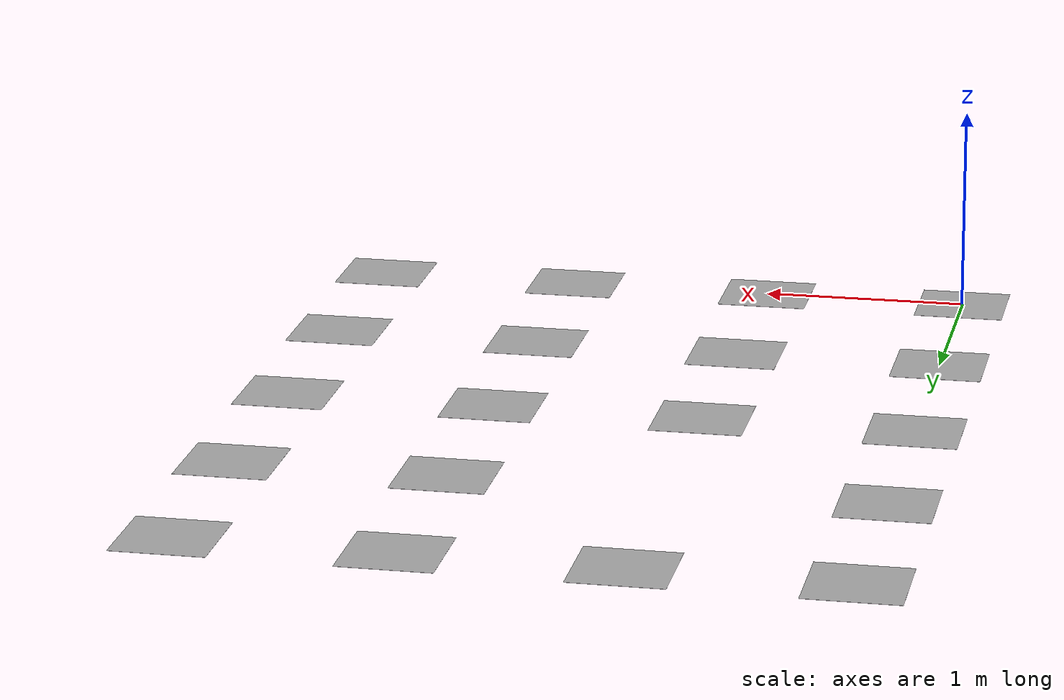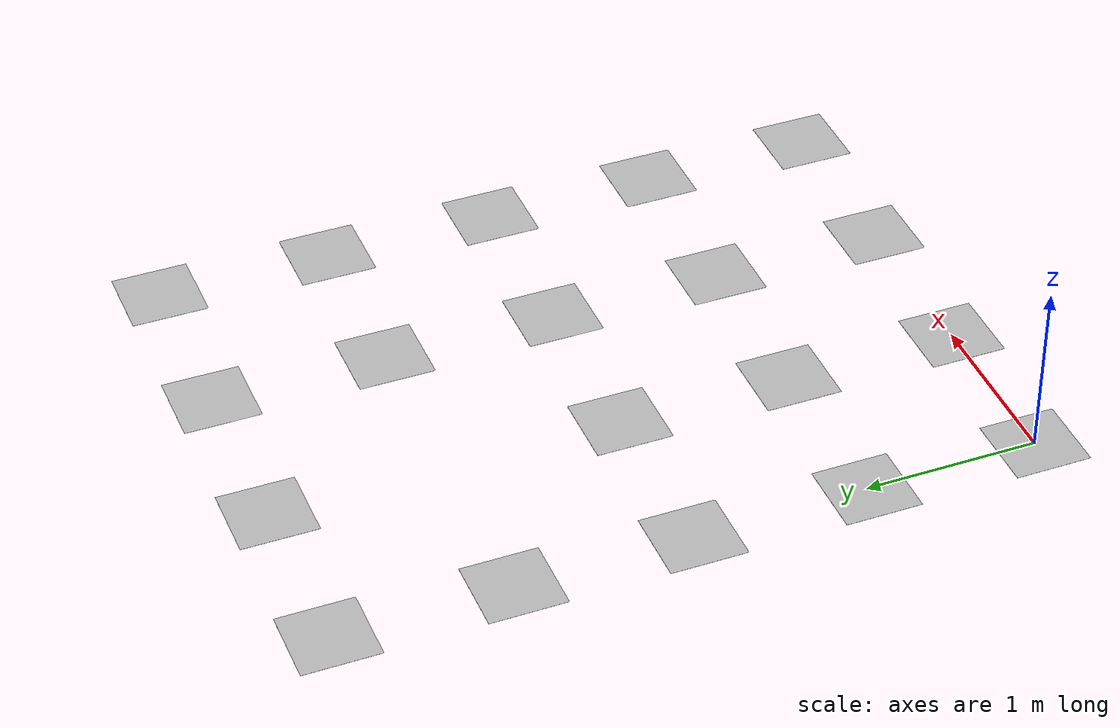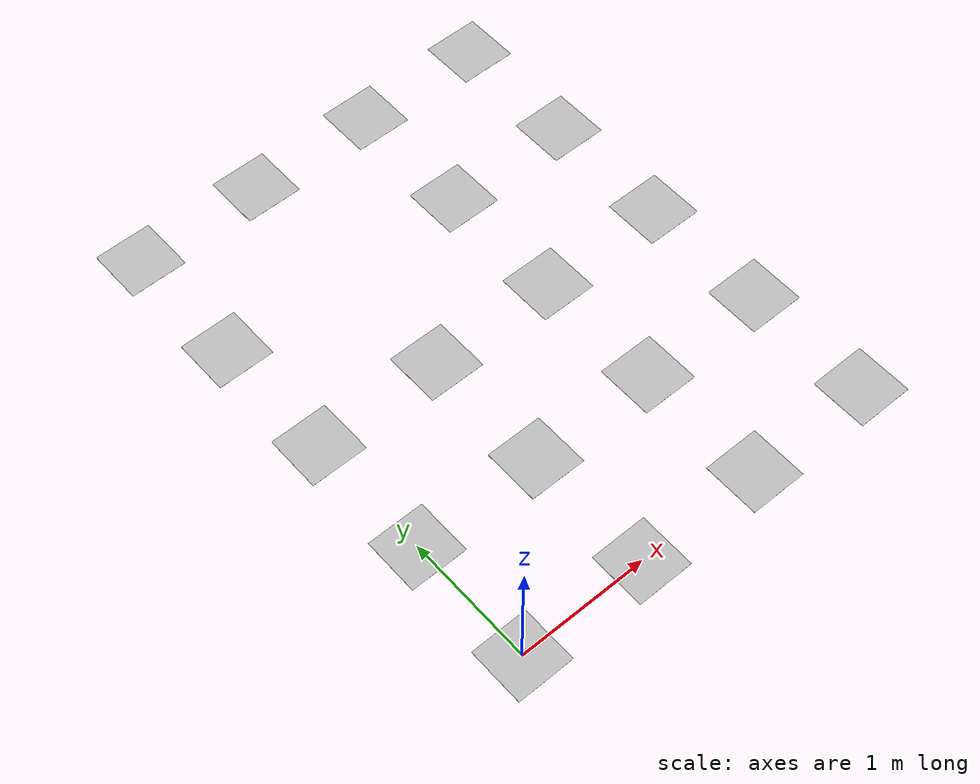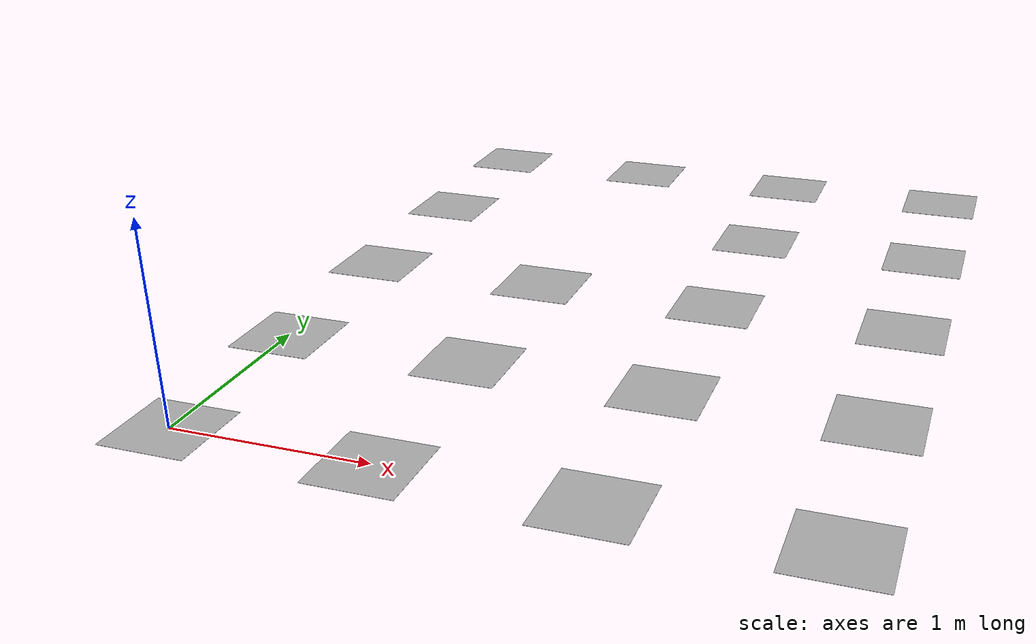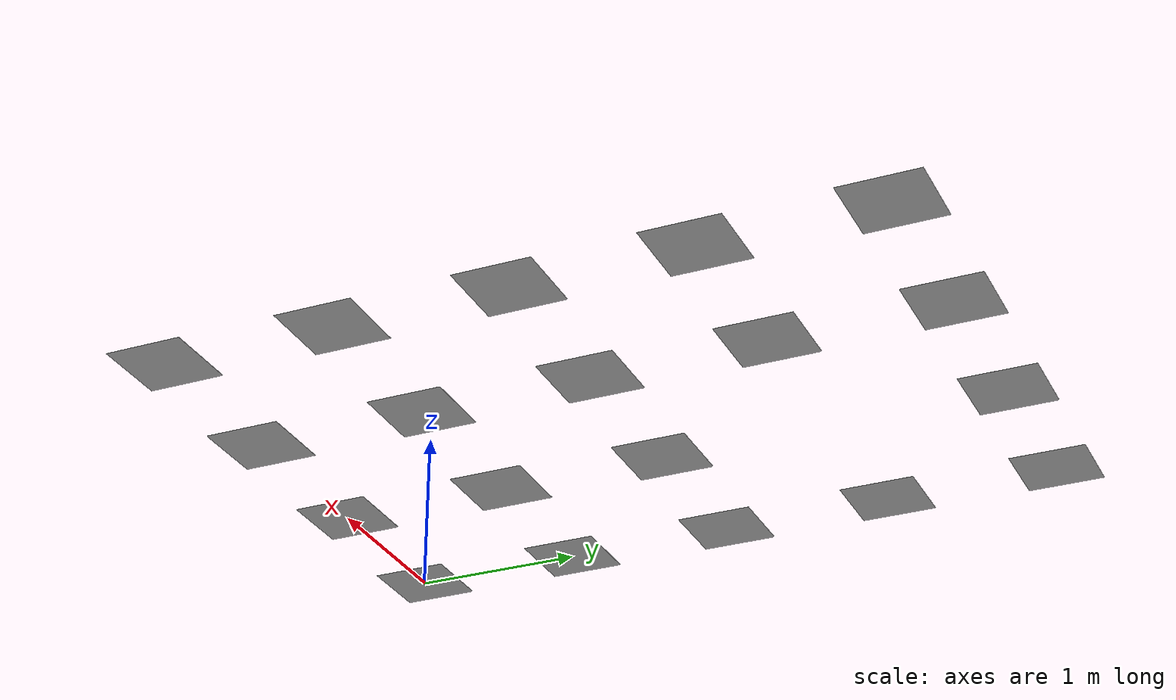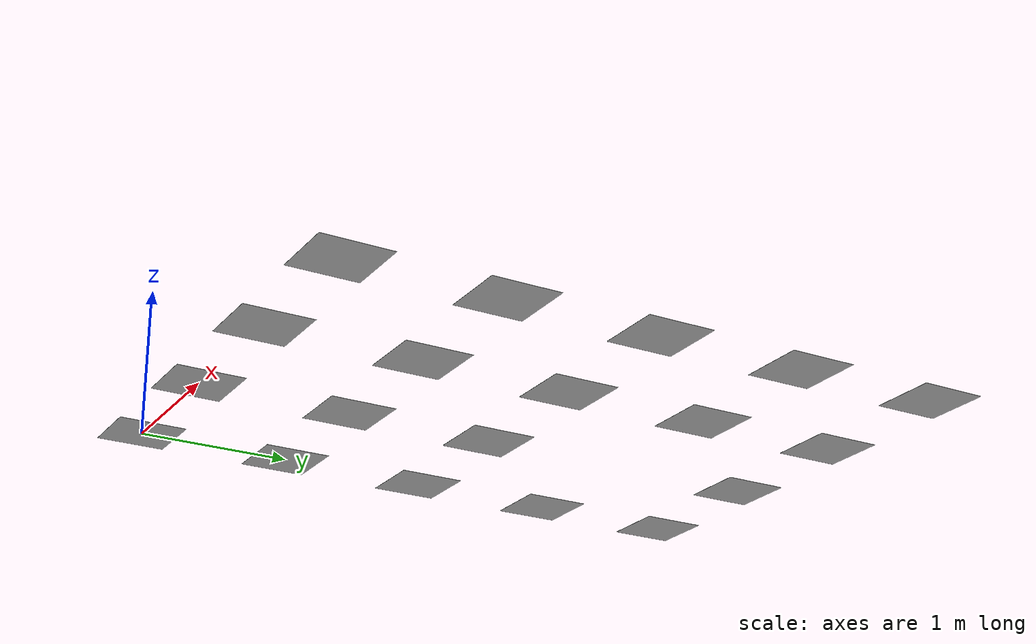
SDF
<?xml version="1.0"?>
<sdf version="1.5">
    <model name="aruco_2_19">
        <static>true</static>
        <link name="aruco_2_19_link">

<visual name="visual_marker_2_143">
    <pose>0.0 0.0 0.0 0.0 0.0 1.5707963267948966</pose>
    <cast_shadows>false</cast_shadows>
    <geometry>
        <box>
            <size>0.44 0.44 1e-3</size>
        </box>
    </geometry>
    <material>
        <script>
            <uri>model://aruco_nto_map_txt/materials/scripts</uri>
            <uri>model://aruco_nto_map_txt/materials/textures</uri>
            <name>aruco/marker_2_143</name>
        </script>
    </material>
</visual>

<visual name="visual_marker_2_142">
    <pose>1.0 0.0 0.0 0.0 0.0 1.5707963267948966</pose>
    <cast_shadows>false</cast_shadows>
    <geometry>
        <box>
            <size>0.44 0.44 1e-3</size>
        </box>
    </geometry>
    <material>
        <script>
            <uri>model://aruco_nto_map_txt/materials/scripts</uri>
            <uri>model://aruco_nto_map_txt/materials/textures</uri>
            <name>aruco/marker_2_142</name>
        </script>
    </material>
</visual>

<visual name="visual_marker_2_147">
    <pose>2.0 0.0 0.0 0.0 0.0 1.5707963267948966</pose>
    <cast_shadows>false</cast_shadows>
    <geometry>
        <box>
            <size>0.44 0.44 1e-3</size>
        </box>
    </geometry>
    <material>
        <script>
            <uri>model://aruco_nto_map_txt/materials/scripts</uri>
            <uri>model://aruco_nto_map_txt/materials/textures</uri>
            <name>aruco/marker_2_147</name>
        </script>
    </material>
</visual>

<visual name="visual_marker_2_128">
    <pose>3.0 0.0 0.0 0.0 0.0 1.5707963267948966</pose>
    <cast_shadows>false</cast_shadows>
    <geometry>
        <box>
            <size>0.44 0.44 1e-3</size>
        </box>
    </geometry>
    <material>
        <script>
            <uri>model://aruco_nto_map_txt/materials/scripts</uri>
            <uri>model://aruco_nto_map_txt/materials/textures</uri>
            <name>aruco/marker_2_128</name>
        </script>
    </material>
</visual>

<visual name="visual_marker_2_144">
    <pose>0.0 1.0 0.0 0.0 0.0 1.5707963267948966</pose>
    <cast_shadows>false</cast_shadows>
    <geometry>
        <box>
            <size>0.44 0.44 1e-3</size>
        </box>
    </geometry>
    <material>
        <script>
            <uri>model://aruco_nto_map_txt/materials/scripts</uri>
            <uri>model://aruco_nto_map_txt/materials/textures</uri>
            <name>aruco/marker_2_144</name>
        </script>
    </material>
</visual>

<visual name="visual_marker_2_157">
    <pose>1.0 1.0 0.0 0.0 0.0 1.5707963267948966</pose>
    <cast_shadows>false</cast_shadows>
    <geometry>
        <box>
            <size>0.44 0.44 1e-3</size>
        </box>
    </geometry>
    <material>
        <script>
            <uri>model://aruco_nto_map_txt/materials/scripts</uri>
            <uri>model://aruco_nto_map_txt/materials/textures</uri>
            <name>aruco/marker_2_157</name>
        </script>
    </material>
</visual>

<visual name="visual_marker_2_158">
    <pose>2.0 1.0 0.0 0.0 0.0 1.5707963267948966</pose>
    <cast_shadows>false</cast_shadows>
    <geometry>
        <box>
            <size>0.44 0.44 1e-3</size>
        </box>
    </geometry>
    <material>
        <script>
            <uri>model://aruco_nto_map_txt/materials/scripts</uri>
            <uri>model://aruco_nto_map_txt/materials/textures</uri>
            <name>aruco/marker_2_158</name>
        </script>
    </material>
</visual>

<visual name="visual_marker_2_125">
    <pose>3.0 1.0 0.0 0.0 0.0 1.5707963267948966</pose>
    <cast_shadows>false</cast_shadows>
    <geometry>
        <box>
            <size>0.44 0.44 1e-3</size>
        </box>
    </geometry>
    <material>
        <script>
            <uri>model://aruco_nto_map_txt/materials/scripts</uri>
            <uri>model://aruco_nto_map_txt/materials/textures</uri>
            <name>aruco/marker_2_125</name>
        </script>
    </material>
</visual>

<visual name="visual_marker_2_145">
    <pose>0.0 2.0 0.0 0.0 0.0 1.5707963267948966</pose>
    <cast_shadows>false</cast_shadows>
    <geometry>
        <box>
            <size>0.44 0.44 1e-3</size>
        </box>
    </geometry>
    <material>
        <script>
            <uri>model://aruco_nto_map_txt/materials/scripts</uri>
            <uri>model://aruco_nto_map_txt/materials/textures</uri>
            <name>aruco/marker_2_145</name>
        </script>
    </material>
</visual>

<visual name="visual_marker_2_146">
    <pose>1.0 2.0 0.0 0.0 0.0 1.5707963267948966</pose>
    <cast_shadows>false</cast_shadows>
    <geometry>
        <box>
            <size>0.44 0.44 1e-3</size>
        </box>
    </geometry>
    <material>
        <script>
            <uri>model://aruco_nto_map_txt/materials/scripts</uri>
            <uri>model://aruco_nto_map_txt/materials/textures</uri>
            <name>aruco/marker_2_146</name>
        </script>
    </material>
</visual>

<visual name="visual_marker_2_127">
    <pose>2.0 2.0 0.0 0.0 0.0 1.5707963267948966</pose>
    <cast_shadows>false</cast_shadows>
    <geometry>
        <box>
            <size>0.44 0.44 1e-3</size>
        </box>
    </geometry>
    <material>
        <script>
            <uri>model://aruco_nto_map_txt/materials/scripts</uri>
            <uri>model://aruco_nto_map_txt/materials/textures</uri>
            <name>aruco/marker_2_127</name>
        </script>
    </material>
</visual>

<visual name="visual_marker_2_126">
    <pose>3.0 2.0 0.0 0.0 0.0 1.5707963267948966</pose>
    <cast_shadows>false</cast_shadows>
    <geometry>
        <box>
            <size>0.44 0.44 1e-3</size>
        </box>
    </geometry>
    <material>
        <script>
            <uri>model://aruco_nto_map_txt/materials/scripts</uri>
            <uri>model://aruco_nto_map_txt/materials/textures</uri>
            <name>aruco/marker_2_126</name>
        </script>
    </material>
</visual>

<visual name="visual_marker_2_138">
    <pose>0.0 3.0 0.0 0.0 0.0 1.5707963267948966</pose>
    <cast_shadows>false</cast_shadows>
    <geometry>
        <box>
            <size>0.44 0.44 1e-3</size>
        </box>
    </geometry>
    <material>
        <script>
            <uri>model://aruco_nto_map_txt/materials/scripts</uri>
            <uri>model://aruco_nto_map_txt/materials/textures</uri>
            <name>aruco/marker_2_138</name>
        </script>
    </material>
</visual>

<visual name="visual_marker_2_160">
    <pose>2.0 3.0 0.0 0.0 0.0 1.5707963267948966</pose>
    <cast_shadows>false</cast_shadows>
    <geometry>
        <box>
            <size>0.44 0.44 1e-3</size>
        </box>
    </geometry>
    <material>
        <script>
            <uri>model://aruco_nto_map_txt/materials/scripts</uri>
            <uri>model://aruco_nto_map_txt/materials/textures</uri>
            <name>aruco/marker_2_160</name>
        </script>
    </material>
</visual>

<visual name="visual_marker_2_155">
    <pose>3.0 3.0 0.0 0.0 0.0 1.5707963267948966</pose>
    <cast_shadows>false</cast_shadows>
    <geometry>
        <box>
            <size>0.44 0.44 1e-3</size>
        </box>
    </geometry>
    <material>
        <script>
            <uri>model://aruco_nto_map_txt/materials/scripts</uri>
            <uri>model://aruco_nto_map_txt/materials/textures</uri>
            <name>aruco/marker_2_155</name>
        </script>
    </material>
</visual>

<visual name="visual_marker_2_139">
    <pose>0.0 4.0 0.0 0.0 0.0 1.5707963267948966</pose>
    <cast_shadows>false</cast_shadows>
    <geometry>
        <box>
            <size>0.44 0.44 1e-3</size>
        </box>
    </geometry>
    <material>
        <script>
            <uri>model://aruco_nto_map_txt/materials/scripts</uri>
            <uri>model://aruco_nto_map_txt/materials/textures</uri>
            <name>aruco/marker_2_139</name>
        </script>
    </material>
</visual>

<visual name="visual_marker_2_148">
    <pose>1.0 4.0 0.0 0.0 0.0 1.5707963267948966</pose>
    <cast_shadows>false</cast_shadows>
    <geometry>
        <box>
            <size>0.44 0.44 1e-3</size>
        </box>
    </geometry>
    <material>
        <script>
            <uri>model://aruco_nto_map_txt/materials/scripts</uri>
            <uri>model://aruco_nto_map_txt/materials/textures</uri>
            <name>aruco/marker_2_148</name>
        </script>
    </material>
</visual>

<visual name="visual_marker_2_156">
    <pose>2.0 4.0 0.0 0.0 0.0 1.5707963267948966</pose>
    <cast_shadows>false</cast_shadows>
    <geometry>
        <box>
            <size>0.44 0.44 1e-3</size>
        </box>
    </geometry>
    <material>
        <script>
            <uri>model://aruco_nto_map_txt/materials/scripts</uri>
            <uri>model://aruco_nto_map_txt/materials/textures</uri>
            <name>aruco/marker_2_156</name>
        </script>
    </material>
</visual>

<visual name="visual_marker_2_159">
    <pose>3.0 4.0 0.0 0.0 0.0 1.5707963267948966</pose>
    <cast_shadows>false</cast_shadows>
    <geometry>
        <box>
            <size>0.44 0.44 1e-3</size>
        </box>
    </geometry>
    <material>
        <script>
            <uri>model://aruco_nto_map_txt/materials/scripts</uri>
            <uri>model://aruco_nto_map_txt/materials/textures</uri>
            <name>aruco/marker_2_159</name>
        </script>
    </material>
</visual>

        </link>
    </model>
</sdf>
